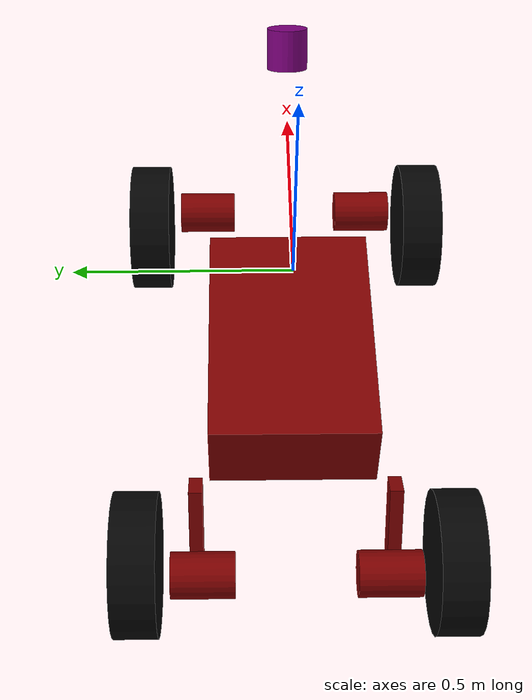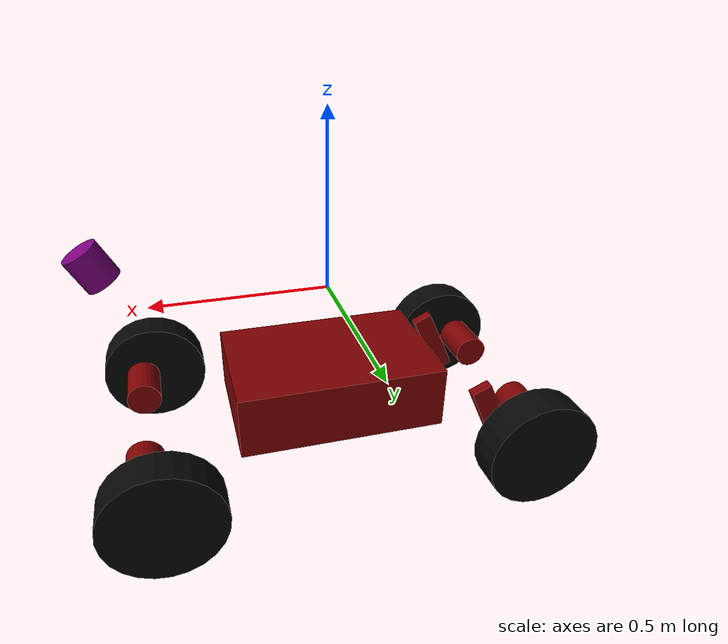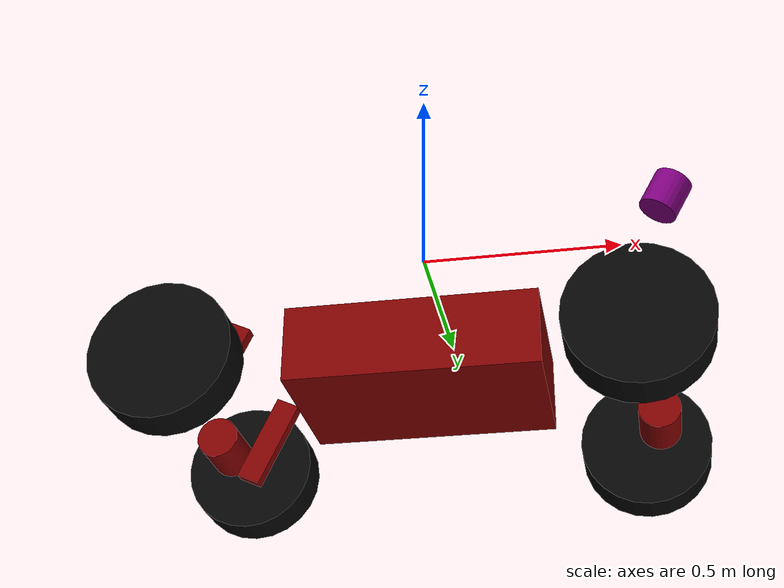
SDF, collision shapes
<?xml version='1.0' encoding='utf-8'?>
<sdf version="1.6">
  <model name="gpr">
    <static>false</static>

    <!-- Platform +++++++++++++++++++++++++++++++++++++ -->

    <!-- Chassis -->
    <link name="base_link">
      <pose frame="">0 0 0 0 0 0</pose>

      <gravity>true</gravity>
      <self_collide>false</self_collide>
      <enable_wind>false</enable_wind>
      <kinematic>false</kinematic>

      <inertial>
        <mass>46.064</mass>
        <inertia>
          <ixx>0.615397</ixx>
          <ixy>-0.0240585</ixy>
          <ixz>-0.120749</ixz>
          <iyy>1.75388</iyy>
          <iyz>-0.0028322</iyz>
          <izz>2.03641</izz>
        </inertia>
      </inertial>

      <!-- Motors -->
      <collision name="motor_rear_left_collision">
        <pose>0.56092 0.20875 -0.38671 1.5708 0 0</pose>
        <geometry>
          <cylinder>
            <radius>0.0525</radius>
            <length>0.14465</length>
          </cylinder>
        </geometry>
      </collision>
      <visual name="motor_rear_left_visual">
        <pose>0.56092 0.20875 -0.38671 1.5708 0 0</pose>
        <geometry>
          <cylinder>
            <radius>0.0525</radius>
            <length>0.14465</length>
          </cylinder>
        </geometry>
        <material>
          <ambient>0.5 0 0 1</ambient>
          <diffuse>0.5 0 0 1</diffuse>
          <specular>0.5 0 0 1</specular>
        </material>
      </visual>
      <collision name="motor_rear_right_collision">
        <pose>0.56092 -0.20875 -0.38671 1.5708 0 0</pose>
        <geometry>
          <cylinder>
            <radius>0.0525</radius>
            <length>0.14465</length>
          </cylinder>
        </geometry>
      </collision>
      <visual name="motor_rear_right_visual">
        <pose>0.56092 -0.20875 -0.38671 1.5708 0 0</pose>
        <geometry>
          <cylinder>
            <radius>0.0525</radius>
            <length>0.14465</length>
          </cylinder>
        </geometry>
        <material>
          <ambient>0.5 0 0 1</ambient>
          <diffuse>0.5 0 0 1</diffuse>
          <specular>0.5 0 0 1</specular>
        </material>
      </visual>
      <collision name="motor_back_left_collision">
        <pose>-0.56092 0.20875 -0.38671 1.5708 0 0</pose>
        <geometry>
          <cylinder>
            <radius>0.0525</radius>
            <length>0.14465</length>
          </cylinder>
        </geometry>
      </collision>
      <visual name="motor_back_left_visual">
        <pose>-0.56092 0.20875 -0.38671 1.5708 0 0</pose>
        <geometry>
          <cylinder>
            <radius>0.0525</radius>
            <length>0.14465</length>
          </cylinder>
        </geometry>
        <material>
          <ambient>0.5 0 0 1</ambient>
          <diffuse>0.5 0 0 1</diffuse>
          <specular>0.5 0 0 1</specular>
        </material>
      </visual>
      <collision name="motor_back_right_collision">
        <pose>-0.56092 -0.20875 -0.38671 1.5708 0 0</pose>
        <geometry>
          <cylinder>
            <radius>0.0525</radius>
            <length>0.14465</length>
          </cylinder>
        </geometry>
      </collision>
      <visual name="motor_back_right_visual">
        <pose>-0.56092 -0.20875 -0.38671 1.5708 0 0</pose>
        <geometry>
          <cylinder>
            <radius>0.0525</radius>
            <length>0.14465</length>
          </cylinder>
        </geometry>
        <material>
          <ambient>0.5 0 0 1</ambient>
          <diffuse>0.5 0 0 1</diffuse>
          <specular>0.5 0 0 1</specular>
        </material>
      </visual>

      <!-- Frame -->
      <collision name="frame_rear_left_collision">
        <pose>-0.44757 0.22456 -0.37413 0 -1.13446 0</pose>
        <geometry>
          <box>
            <size>0.22860 0.031 0.062</size>
          </box>
        </geometry>
      </collision>
      <visual name="frame_rear_left_visual">
        <pose>-0.44757 0.22456 -0.37413 0 -1.13446 0</pose>
        <geometry>
          <box>
            <size>0.22860 0.031 0.062</size>
          </box>
        </geometry>
        <material>
          <ambient>0.5 0 0 1</ambient>
          <diffuse>0.5 0 0 1</diffuse>
          <specular>0.5 0 0 1</specular>
        </material>
      </visual>
      <collision name="frame_rear_right_collision">
        <pose>-0.44757 -0.22456 -0.37413 0 -1.13446 0</pose>
        <geometry>
          <box>
            <size>0.22860 0.031 0.062</size>
          </box>
        </geometry>
      </collision>
      <visual name="frame_rear_right_visual">
        <pose>-0.44757 -0.22456 -0.37413 0 -1.13446 0</pose>
        <geometry>
          <box>
            <size>0.22860 0.031 0.062</size>
          </box>
        </geometry>
        <material>
          <ambient>0.5 0 0 1</ambient>
          <diffuse>0.5 0 0 1</diffuse>
          <specular>0.5 0 0 1</specular>
        </material>
      </visual>

      <!-- GPR -->
      <collision name="gpr_collision">
        <pose>0 0 -0.30602 0 0 0</pose>
        <geometry>
          <box>
            <size>0.60600 0.39400 0.18830</size>
          </box>
        </geometry>
      </collision>
      <visual name="gpr__visual">
        <pose>0 0 -0.30602 0 0 0</pose>
        <geometry>
          <box>
            <size>0.60600 0.39400 0.18830</size>
          </box>
        </geometry>
        <material>
          <ambient>0.5 0 0 1</ambient>
          <diffuse>0.5 0 0 1</diffuse>
          <specular>0.5 0 0 1</specular>
        </material>
      </visual>

      <!-- PV -->

      <!-- GPS -->
      <visual name="gps_visual">
        <pose>-0.58619 0.19456 0.66055 0 0 0</pose>
        <geometry>
          <cylinder>
            <radius>0.088</radius>
            <length>0.07</length>
          </cylinder>
        </geometry>
        <material>
          <ambient> 0.5 0.0 0.5 1</ambient>
          <diffuse> 0.5 0.0 0.5 1</diffuse>
          <specular>0.5 0.0 0.5 1</specular>
        </material>
      </visual>
      <visual name="gps_pole_visual">
        <pose>-0.58619 0.19456 0.25 0 0 0</pose>
        <geometry>
          <cylinder>
            <radius>0.02</radius>
            <length>1.0</length>
          </cylinder>
        </geometry>
        <material>
          <ambient> 0.5 0.0 0.5 1</ambient>
          <diffuse> 0.5 0.0 0.5 1</diffuse>
          <specular>0.5 0.0 0.5 1</specular>
        </material>
      </visual>

      <!-- Base -->
      <visual name="base_link_visual">
        <pose>0 0 0 1.5708 0 1.5708</pose>
        <geometry>
          <mesh>
            <scale>1 1 1</scale>
            <uri>meshes/chassis.stl</uri>
          </mesh>
        </geometry>
        <material>
          <ambient> 0.25 0.25 0.25 1</ambient>
          <diffuse> 0.25 0.25 0.25 1</diffuse>
          <specular>0.25 0.25 0.25 1</specular>
        </material>
      </visual>

    </link>

    <!-- Front left Wheel -->
    <link name="front_left_wheel_link">
      <pose>0.52294 0.35953 -0.40442 1.5708 0 0</pose>
      <gravity>true</gravity>
      <self_collide>false</self_collide>
      <enable_wind>false</enable_wind>
      <kinematic>false</kinematic>
      <inertial>
        <mass>2.637</mass>
        <inertia>
          <ixx>0.02467</ixx>
          <ixy>0</ixy>
          <ixz>0</ixz>
          <iyy>0.04411</iyy>
          <iyz>0</iyz>
          <izz>0.02467</izz>
        </inertia>
      </inertial>
      <collision name="collision">
        <pose>0 0 0 0 0 0</pose>
        <geometry>
          <cylinder>
            <length>0.10231</length>
            <radius>0.1651</radius>
          </cylinder>
        </geometry>
        <surface>
          <contact>
            <ode>
              <kp>1e+07</kp>
              <kd>1</kd>
            </ode>
          </contact>
          <friction>
            <ode>
              <mu>0.5</mu>
              <mu2>1</mu2>
              <slip1>0.00062</slip1>
              <slip2>0</slip2>
              <fdir1>0 0 1</fdir1>
            </ode>
          </friction>
        </surface>
      </collision>
      <visual name="visual">
        <pose>0 0 0 0 0 0</pose>
        <geometry>
          <mesh>
            <scale>1 1 1</scale>
            <uri>meshes/wheel.stl</uri>
          </mesh>
        </geometry>
        <material>
          <ambient> 0.02 0.02 0.02 1</ambient>
          <diffuse> 0.02 0.02 0.02 1</diffuse>
          <specular>0.02 0.02 0.02 1</specular>
        </material>
      </visual>
    </link>
    <joint name="front_left_wheel_joint" type="revolute">
      <child>front_left_wheel_link</child>
      <parent>base_link</parent>
      <axis>
        <xyz>0 1 0</xyz>
        <limit>
          <lower>-1e+16</lower>
          <upper>1e+16</upper>
        </limit>
        <dynamics>
          <spring_reference>0</spring_reference>
          <spring_stiffness>0</spring_stiffness>
        </dynamics>
        <use_parent_model_frame>1</use_parent_model_frame>
      </axis>
    </joint>

    <!-- Front right Wheel -->
    <link name="front_right_wheel_link">
      <pose>0.52294 -0.35953 -0.40442 1.5708 0 0</pose>
      <gravity>true</gravity>
      <self_collide>false</self_collide>
      <enable_wind>false</enable_wind>
      <kinematic>false</kinematic>
      <inertial>
        <mass>2.637</mass>
        <inertia>
          <ixx>0.02467</ixx>
          <ixy>0</ixy>
          <ixz>0</ixz>
          <iyy>0.04411</iyy>
          <iyz>0</iyz>
          <izz>0.02467</izz>
        </inertia>
      </inertial>
      <collision name="collision">
        <pose>0 0 0 0 0 0</pose>
        <geometry>
          <cylinder>
            <length>0.10231</length>
            <radius>0.1651</radius>
          </cylinder>
        </geometry>
        <surface>
          <contact>
            <ode>
              <kp>1e+07</kp>
              <kd>1</kd>
            </ode>
          </contact>
          <friction>
            <ode>
              <mu>0.5</mu>
              <mu2>1</mu2>
              <slip1>0.00062</slip1>
              <slip2>0</slip2>
              <fdir1>0 0 1</fdir1>
            </ode>
          </friction>
        </surface>
      </collision>
      <visual name="visual">
        <pose>0 0 0 0 0 0</pose>
        <geometry>
          <mesh>
            <scale>1 1 1</scale>
            <uri>meshes/wheel.stl</uri>
          </mesh>
        </geometry>
        <material>
          <ambient> 0.02 0.02 0.02 1</ambient>
          <diffuse> 0.02 0.02 0.02 1</diffuse>
          <specular>0.02 0.02 0.02 1</specular>
        </material>
      </visual>
    </link>
    <joint name="front_right_wheel_joint" type="revolute">
      <child>front_right_wheel_link</child>
      <parent>base_link</parent>
      <axis>
        <xyz>0 1 0</xyz>
        <limit>
          <lower>-1e+16</lower>
          <upper>1e+16</upper>
        </limit>
        <dynamics>
          <spring_reference>0</spring_reference>
          <spring_stiffness>0</spring_stiffness>
        </dynamics>
        <use_parent_model_frame>1</use_parent_model_frame>
      </axis>
    </joint>

    <!-- Rear left Wheel -->
    <link name="rear_left_wheel_link">
      <pose>-0.52294 0.35953 -0.40442 1.5708 0 0</pose>
      <gravity>true</gravity>
      <self_collide>false</self_collide>
      <enable_wind>false</enable_wind>
      <kinematic>false</kinematic>
      <inertial>
        <mass>2.637</mass>
        <inertia>
          <ixx>0.02467</ixx>
          <ixy>0</ixy>
          <ixz>0</ixz>
          <iyy>0.04411</iyy>
          <iyz>0</iyz>
          <izz>0.02467</izz>
        </inertia>
      </inertial>
      <collision name="collision">
        <pose>0 0 0 0 0 0</pose>
        <geometry>
          <cylinder>
            <length>0.10231</length>
            <radius>0.1651</radius>
          </cylinder>
        </geometry>
        <surface>
          <contact>
            <ode>
              <kp>1e+07</kp>
              <kd>1</kd>
            </ode>
          </contact>
          <friction>
            <ode>
              <mu>0.5</mu>
              <mu2>1</mu2>
              <slip1>0.00062</slip1>
              <slip2>0</slip2>
              <fdir1>0 0 1</fdir1>
            </ode>
          </friction>
        </surface>
      </collision>
      <visual name="visual">
        <pose>0 0 0 0 0 0</pose>
        <geometry>
          <mesh>
            <scale>1 1 1</scale>
            <uri>meshes/wheel.stl</uri>
          </mesh>
        </geometry>
        <material>
          <ambient> 0.02 0.02 0.02 1</ambient>
          <diffuse> 0.02 0.02 0.02 1</diffuse>
          <specular>0.02 0.02 0.02 1</specular>
        </material>
      </visual>
    </link>
    <joint name="rear_left_wheel_joint" type="revolute">
      <child>rear_left_wheel_link</child>
      <parent>base_link</parent>
      <axis>
        <xyz>0 1 0</xyz>
        <limit>
          <lower>-1e+16</lower>
          <upper>1e+16</upper>
        </limit>
        <dynamics>
          <spring_reference>0</spring_reference>
          <spring_stiffness>0</spring_stiffness>
        </dynamics>
        <use_parent_model_frame>1</use_parent_model_frame>
      </axis>
    </joint>

    <!-- Rear right Wheel -->
    <link name="rear_right_wheel_link">
      <pose>-0.52294 -0.35953 -0.40442 1.5708 0 0</pose>
      <gravity>true</gravity>
      <self_collide>false</self_collide>
      <enable_wind>false</enable_wind>
      <kinematic>false</kinematic>
      <inertial>
        <mass>2.637</mass>
        <inertia>
          <ixx>0.02467</ixx>
          <ixy>0</ixy>
          <ixz>0</ixz>
          <iyy>0.04411</iyy>
          <iyz>0</iyz>
          <izz>0.02467</izz>
        </inertia>
      </inertial>
      <collision name="collision">
        <pose>0 0 0 0 0 0</pose>
        <geometry>
          <cylinder>
            <length>0.10231</length>
            <radius>0.1651</radius>
          </cylinder>
        </geometry>
        <surface>
          <contact>
            <ode>
              <kp>1e+07</kp>
              <kd>1</kd>
            </ode>
          </contact>
          <friction>
            <ode>
              <mu>0.5</mu>
              <mu2>1</mu2>
              <slip1>0.00062</slip1>
              <slip2>0</slip2>
              <fdir1>0 0 1</fdir1>
            </ode>
          </friction>
        </surface>
      </collision>
      <visual name="visual">
        <pose>0 0 0 0 0 0</pose>
        <geometry>
          <mesh>
            <scale>1 1 1</scale>
            <uri>meshes/wheel.stl</uri>
          </mesh>
        </geometry>
        <material>
          <ambient> 0.02 0.02 0.02 1</ambient>
          <diffuse> 0.02 0.02 0.02 1</diffuse>
          <specular>0.02 0.02 0.02 1</specular>
        </material>
      </visual>
    </link>
    <joint name="rear_right_wheel_joint" type="revolute">
      <child>rear_right_wheel_link</child>
      <parent>base_link</parent>
      <axis>
        <xyz>0 1 0</xyz>
        <limit>
          <lower>-1e+16</lower>
          <upper>1e+16</upper>
        </limit>
        <dynamics>
          <spring_reference>0</spring_reference>
          <spring_stiffness>0</spring_stiffness>
        </dynamics>
        <use_parent_model_frame>1</use_parent_model_frame>
      </axis>
    </joint>

    <!-- Sensors +++++++++++++++++++++++++++++++++++++ -->

    <!-- Lidar -->
    <link name="lidar_link">
      <pose>0.62046 0 0.13303 0 0.50562677122 0</pose>
      <inertial>
        <mass>0.1</mass>
        <inertia>
          <ixx>0.000166667</ixx>
          <iyy>0.000166667</iyy>
          <izz>0.000166667</izz>
        </inertia>
      </inertial>
      <collision name="collision">
        <geometry>
          <cylinder>
            <radius>0.05</radius>
            <length>0.1</length>
          </cylinder>
        </geometry>
      </collision>
      <visual name="visual">
        <geometry>
          <cylinder>
            <radius>0.05</radius>
            <length>0.1</length>
          </cylinder>
        </geometry>
        <material>
          <ambient> 0.5 0.0 0.5 1</ambient>
          <diffuse> 0.5 0.0 0.5 1</diffuse>
          <specular>0.5 0.0 0.5 1</specular>
        </material>
      </visual>
      <sensor name='os1_32' type='gpu_lidar'>
        <topic>lidar</topic>
        <visualize>true</visualize>
        <always_on>true</always_on>
        <update_rate>10</update_rate>
        <lidar>
          <scan>
            <horizontal>
              <samples>1024</samples>
              <resolution>1</resolution>
              <min_angle>-1.396263</min_angle>
              <max_angle>1.396263</max_angle>
            </horizontal>
            <vertical>
              <samples>32</samples>
              <resolution>1</resolution>
              <min_angle>-0.261799</min_angle>
              <max_angle>0.261799</max_angle>
            </vertical>
          </scan>
          <range>
            <min>0.1</min>
            <max>120.0</max>
            <resolution>0.01</resolution>
          </range>
        </lidar>
      </sensor>
    </link>
    <joint name='lidar_joint' type='fixed'>
      <child>lidar_link</child>
      <parent>base_link</parent>
    </joint>

  </model>
</sdf>
